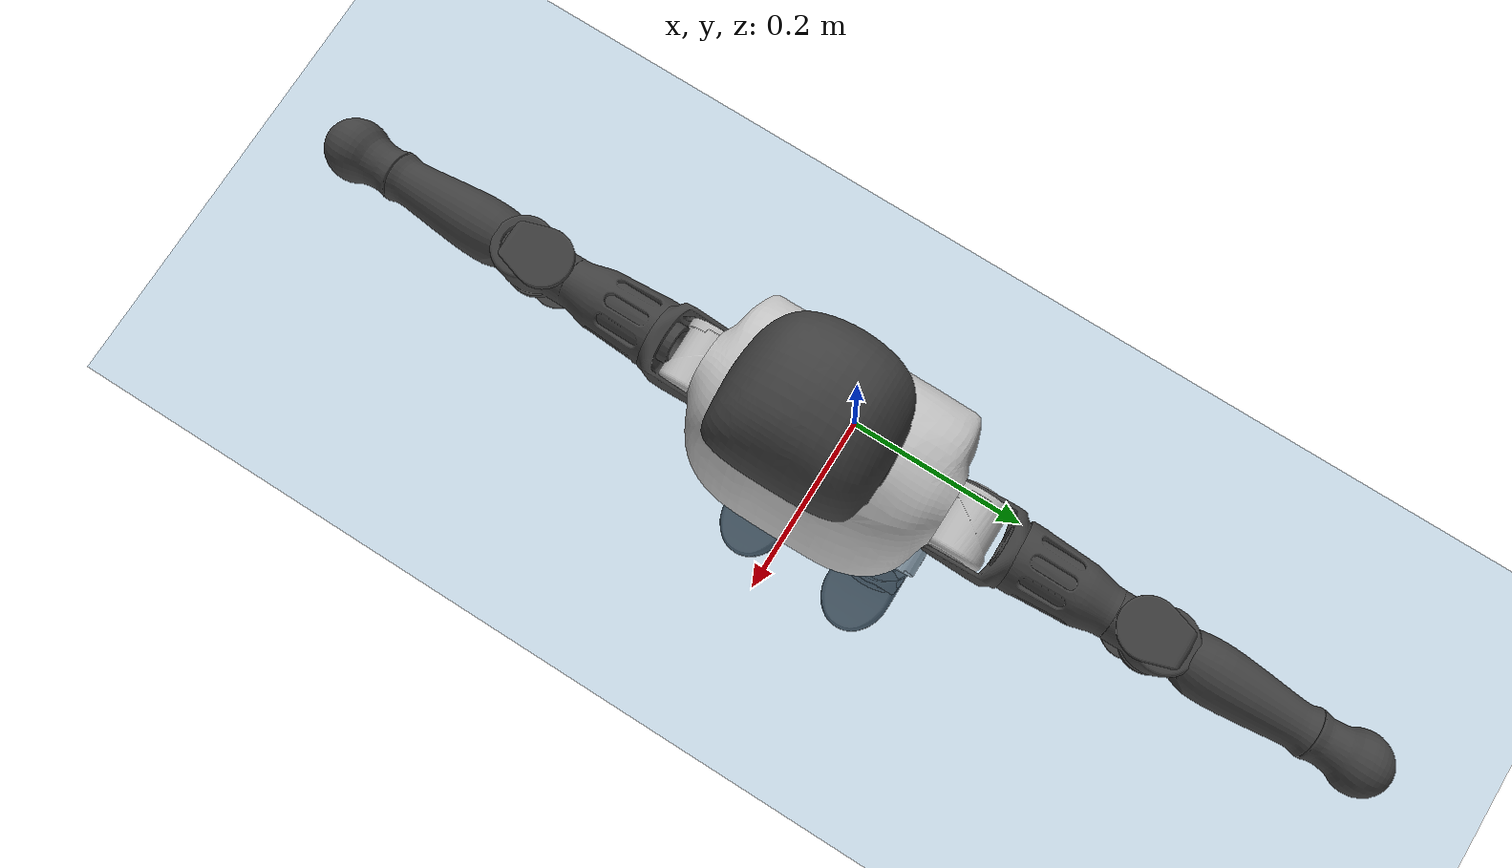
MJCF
<mujoco model="T1">
  <compiler angle="radian" assetdir="assets" balanceinertia="true" inertiafromgeom="false"/>

  <option timestep="0.005" density="1.2" viscosity="2e-05"/>

  <size nkey="1"/>

  <visual>
    <quality shadowsize="8192"/>
    <map shadowclip="0.5"/>
  </visual>

  <default>
    <default class="/">
      <joint armature="0.01" damping="0.01" frictionloss="0.1"/>
      <geom contype="0" conaffinity="0" group="1" solref="-1000 -80"/>
      <site size="0.01 0.005 0.005" group="5"/>
      <general forcelimited="true" biastype="affine" gainprm="25" biasprm="0 -25 -0.6"/>
      <default class="t1">
        <geom rgba="0.25 0.25 0.25 1"/>
        <default class="visual">
          <geom type="mesh" group="2"/>
        </default>
        <default class="collision">
          <geom group="3"/>
        </default>
        <default class="foot">
          <geom size="0.1115 0.05 0.015" type="box" condim="6" group="4" priority="1" solimp="0.015 1 0.015"/>
        </default>
        <default class="reward_collision_sphere">
          <geom group="5" rgba="1 0 0 1"/>
        </default>
      </default>
    </default>
  </default>

  <asset>
    <texture type="skybox" colorspace="auto" name="//unnamed_texture_0" builtin="gradient" rgb1="0.95 0.95 0.95" rgb2="0.95 0.95 0.95" width="100" height="600"/>
    <texture type="2d" colorspace="auto" name="texplane" builtin="checker" rgb1="0.345 0.575 0.748" rgb2="0.345 0.575 0.748" markrgb="1 1 1" width="512" height="512"/>
    <material name="MatPlane" class="/" texture="texplane" texuniform="true" texrepeat="2 2" specular="0.9"/>
    <mesh name="Trunk" class="/" file="Trunk.stl"/>
    <mesh name="H1" class="/" file="H1.stl"/>
    <mesh name="H2" class="/" file="H2.stl"/>
    <mesh name="AL1" class="/" file="AL1.stl"/>
    <mesh name="AL2" class="/" file="AL2.stl"/>
    <mesh name="AL3" class="/" file="AL3.stl"/>
    <mesh name="left_hand_link" class="/" file="left_hand_link.stl"/>
    <mesh name="AR1" class="/" file="AR1.stl"/>
    <mesh name="AR2" class="/" file="AR2.stl"/>
    <mesh name="AR3" class="/" file="AR3.stl"/>
    <mesh name="right_hand_link" class="/" file="right_hand_link.stl"/>
    <mesh name="Waist" class="/" file="Waist.stl"/>
    <mesh name="Hip_Pitch_Left" class="/" file="Hip_Pitch_Left.stl"/>
    <mesh name="Hip_Roll_Left" class="/" file="Hip_Roll_Left.stl"/>
    <mesh name="Hip_Yaw_Left" class="/" file="Hip_Yaw_Left.stl"/>
    <mesh name="Shank_Left" class="/" file="Shank_Left.stl"/>
    <mesh name="Ankle_Cross_Left" class="/" file="Ankle_Cross_Left.stl"/>
    <mesh name="left_foot_link" class="/" file="left_foot_link.stl"/>
    <mesh name="Hip_Pitch_Right" class="/" file="Hip_Pitch_Right.stl"/>
    <mesh name="Hip_Roll_Right" class="/" file="Hip_Roll_Right.stl"/>
    <mesh name="Hip_Yaw_Right" class="/" file="Hip_Yaw_Right.stl"/>
    <mesh name="Shank_Right" class="/" file="Shank_Right.stl"/>
    <mesh name="Ankle_Cross_Right" class="/" file="Ankle_Cross_Right.stl"/>
    <mesh name="right_foot_link" class="/" file="right_foot_link.stl"/>
  </asset>

  <worldbody>
    <geom name="floor" class="/" size="100 100 0.125" type="plane" group="0" material="MatPlane"/>
    <light name="toplight_shadow" class="/" pos="0 0 5" dir="0.0990148 0.0990148 -0.990148" type="directional" ambient="0.04 0.04 0.04" diffuse="0.55 0.55 0.55" specular="0.12 0.12 0.12"/>
    <light name="toplight_fill" class="/" pos="0 0 5" dir="0.0990148 0.0990148 -0.990148" type="directional" castshadow="false" ambient="0.04 0.04 0.04" diffuse="0.3 0.3 0.3" specular="0.08 0.08 0.08"/>
    <body name="trunk" childclass="t1" pos="-0.00171323 0.00280479 -0.00133771" quat="0.999999 0.00093687 -0.000827992 0.000991786">
      <inertial pos="0.0514432 0.00168827 0.084752" quat="0.999929 -0.0031416 -0.0114838 0.000825779" mass="7.50371" diaginertia="0.0636477 0.0353678 0.0151088"/>
      <joint name="//unnamed_joint_0" type="free" armature="0" damping="0" frictionloss="0"/>
      <geom name="//unnamed_geom_1" class="visual" rgba="0.76 0.76 0.76 1" mesh="Trunk"/>
      <geom name="//unnamed_geom_2" class="collision" size="0.0648058 0.0864077 0.129612" pos="0.0563089 0 0.0946452" type="box"/>
      <geom name="//unnamed_geom_3" class="reward_collision_sphere" size="0.0993689" pos="0.0563089 0 0.078871"/>
      <geom name="//unnamed_geom_4" class="reward_collision_sphere" size="0.0129612" pos="0.0563089 0.0735283 0"/>
      <geom name="//unnamed_geom_5" class="reward_collision_sphere" size="0.0129612" pos="0.0563089 -0.0735283 0"/>
      <geom name="//unnamed_geom_6" class="reward_collision_sphere" size="0.0129612" pos="0.0563089 0.0925591 0.141968"/>
      <geom name="//unnamed_geom_7" class="reward_collision_sphere" size="0.0129612" pos="0.0563089 -0.0925591 0.141968"/>
      <site name="imu" pos="-0.00669359 -0.0118408 0.0121159" size="0.00864077"/>
      <camera name="track" pos="0 -1.73008 0" quat="0.707107 0.707107 0 0" mode="trackcom"/>
      <camera name="ego_camera" pos="0.114495 0 0.331258" quat="-0.5 -0.5 0.5 0.5"/>
      <body name="H1" pos="0.055292 -0.00329534 0.192615" quat="1 -3.30319e-05 -4.88506e-05 -3.0887e-05">
        <inertial pos="0.00113285 -8.13166e-06 0.0438581" quat="0.758244 -0.0312066 0.0219707 0.650852" mass="0.275719" diaginertia="0.000179578 0.00010677 4.52245e-05"/>
        <joint name="AAHead_yaw" pos="0 0 0" axis="-0.00448979 -0.0110008 0.999929" range="-1.5971 1.60764" armature="0.00951012" damping="0" frictionloss="0.0619719"/>
        <geom name="//unnamed_geom_8" class="visual" mesh="H1"/>
        <body name="H2" pos="-0.00298398 -4.01566e-05 0.0483356" quat="1 -8.75907e-05 0.00026597 -0.000383841">
          <inertial pos="0.00847954 -1.22295e-05 0.0782107" quat="0.987717 0.105738 -0.0819441 -0.0807458" mass="0.410739" diaginertia="0.00151336 0.000983644 0.000516965"/>
          <joint name="Head_pitch" pos="0 0 0" axis="-0.0090346 -0.999926 -0.00817461" range="-1.25431 0.386319" armature="0.0105568" damping="0.00611047" frictionloss="0.0759658"/>
          <geom name="//unnamed_geom_9" class="visual" mesh="H2"/>
          <geom name="//unnamed_geom_10" class="collision" size="0.0691262" pos="0.00938482 0 0.0867581"/>
          <geom name="//unnamed_geom_11" class="reward_collision_sphere" size="0.0777669" pos="0.0187696 0 0.078871"/>
        </body>
      </body>
      <body name="AL1" pos="0.0545935 0.0961986 0.170286" quat="1 0.000270327 0.000811149 -0.000161828">
        <inertial pos="-0.0015549 0.039401 0.00132253" quat="0.508413 0.482977 -0.522762 0.484736" mass="0.329647" diaginertia="0.000989321 0.000629935 8.60183e-05"/>
        <joint name="Left_Shoulder_Pitch" pos="0 0 0" axis="0.00236764 0.999997 -0.000166998" range="-3.31797 1.25131" armature="0.00861986" damping="0.00324446" frictionloss="0.0758646"/>
        <geom name="//unnamed_geom_12" class="visual" rgba="0.76 0.76 0.76 1" mesh="AL1"/>
        <body name="AL2" pos="0.000969375 0.0417476 -0.00106291" quat="1 -0.00011757 6.86035e-05 0.000126565">
          <inertial pos="0.00444357 0.0323675 -0.00083273" quat="0.488839 0.51111 -0.487114 0.51237" mass="0.100957" diaginertia="0.000285658 0.00016754 5.07992e-05"/>
          <joint name="Left_Shoulder_Roll" pos="0 0 0" axis="-0.999939 -0.00507357 -0.0097895" range="-1.60274 1.74058" armature="0.00871848" damping="0.00107726" frictionloss="0.0775174"/>
          <geom name="//unnamed_geom_13" class="visual" mesh="AL2"/>
          <body name="AL3" pos="-0.00215428 0.054 0.000747151" quat="1 0.00011226 0.000615985 0.000402682">
            <inertial pos="0.00429945 0.0752131 0.000574193" quat="0.700649 0.713447 -0.00646796 0.006489" mass="0.650017" diaginertia="0.00948327 0.00649902 0.000193311"/>
            <joint name="Left_Elbow_Pitch" pos="0 0 0" axis="-0.000991684 -0.99998 0.0062853" range="-2.26336 2.2727" armature="0.00870821" damping="0.00626024" frictionloss="0.0756372"/>
            <geom name="//unnamed_geom_14" class="visual" mesh="AL3"/>
            <geom name="//unnamed_geom_15" class="collision" size="0.0259223 0.0648058" pos="0 0.0432519 0" quat="0.707105 0.707108 0 0" type="cylinder"/>
            <geom name="//unnamed_geom_16" class="reward_collision_sphere" size="0.0311068"/>
            <body name="left_hand_link" pos="-0.000426387 0.126912 0.00552548" quat="0.999998 -0.00118469 0.000841259 -0.000961865">
              <inertial pos="5.94233e-06 0.0954983 -0.000178292" quat="0.70904 0.705166 -0.000221579 0.00188815" mass="0.213712" diaginertia="0.00603885 0.0040446 7.12419e-05"/>
              <joint name="Left_Elbow_Yaw" pos="0 0 0" axis="0.00429203 -0.0128262 0.999909" range="-2.49202 -0.0353486" armature="0.00773981" damping="0.0201053" frictionloss="0.0882524"/>
              <geom name="//unnamed_geom_17" class="visual" mesh="left_hand_link"/>
              <geom name="//unnamed_geom_18" class="collision" size="0.0259223 0.0756067" pos="0 0.112455 0" quat="0.707105 0.707108 0 0" type="cylinder"/>
              <geom name="//unnamed_geom_19" class="reward_collision_sphere" size="0.0432039"/>
              <geom name="//unnamed_geom_20" class="reward_collision_sphere" size="0.0302427" pos="0 0.0951543 0"/>
              <geom name="//unnamed_geom_21" class="reward_collision_sphere" size="0.0302427" pos="0 0.185983 0"/>
            </body>
          </body>
        </body>
      </body>
      <body name="AR1" pos="0.0542733 -0.0871336 0.172929" quat="0.999999 -0.00122708 -0.000516161 0.000211453">
        <inertial pos="-0.000589297 -0.0362952 -0.00434321" quat="0.505472 0.497706 -0.494611 0.502142" mass="0.338803" diaginertia="0.000980131 0.000655767 8.8415e-05"/>
        <joint name="Right_Shoulder_Pitch" pos="0 0 0" axis="0.00708805 -0.999803 -0.0185323" range="-1.26035 3.27995" armature="0.00951042" damping="0.0107538" frictionloss="0.0788517"/>
        <geom name="//unnamed_geom_22" class="visual" rgba="0.76 0.76 0.76 1" mesh="AR1"/>
        <body name="AR2" pos="-0.000132925 -0.0408274 0.00209559" quat="1 2.72261e-05 2.92035e-05 -5.08217e-05">
          <inertial pos="0.00344102 -0.0331406 0.000170565" quat="0.509489 0.490821 -0.510809 0.488457" mass="0.0987596" diaginertia="0.00026826 0.000153344 5.3573e-05"/>
          <joint name="Right_Shoulder_Roll" pos="0 0 0" axis="-0.999977 -0.00417324 0.00537355" range="-1.74554 1.55663" armature="0.010182" damping="0.00774944" frictionloss="0.0764684"/>
          <geom name="//unnamed_geom_23" class="visual" mesh="AR2"/>
          <body name="AR3" pos="-0.00214794 -0.0494936 -0.00350351" quat="0.999999 0.000264815 0.00102604 7.60353e-05">
            <inertial pos="-0.00553496 -0.0722916 -0.00302548" quat="0.707525 0.70668 -0.00241486 0.00247675" mass="0.663121" diaginertia="0.0099409 0.00627151 0.000187001"/>
            <joint name="Right_Elbow_Pitch" pos="0 0 0" axis="0.000528814 1 -0.00065542" range="-2.32164 2.2748" armature="0.00824032" damping="0.0037287" frictionloss="0.062051"/>
            <geom name="//unnamed_geom_24" class="visual" mesh="AR3"/>
            <geom name="//unnamed_geom_25" class="collision" size="0.0259223 0.0648058" pos="0 -0.0432519 0" quat="0.707105 0.707108 0 0" type="cylinder"/>
            <geom name="//unnamed_geom_26" class="reward_collision_sphere" size="0.0311068"/>
            <body name="right_hand_link" pos="-8.64185e-06 -0.123334 0.00301241" quat="1 -0.00016825 -0.000253662 -0.000251848">
              <inertial pos="-0.000416571 -0.0922323 -0.00146478" quat="0.706127 0.708084 0.00117413 -0.000354429" mass="0.203598" diaginertia="0.00557092 0.00369101 6.08328e-05"/>
              <joint name="Right_Elbow_Yaw" pos="0 0 0" axis="0.0226177 -0.0108924 0.999685" range="-0.0460415 2.44609" armature="0.00803614" damping="0.00415489" frictionloss="0.088163"/>
              <geom name="//unnamed_geom_27" class="visual" mesh="right_hand_link"/>
              <geom name="//unnamed_geom_28" class="collision" size="0.0259223 0.0756067" pos="0 -0.112455 0" quat="0.707105 0.707108 0 0" type="cylinder"/>
              <geom name="//unnamed_geom_29" class="reward_collision_sphere" size="0.0432039"/>
              <geom name="//unnamed_geom_30" class="reward_collision_sphere" size="0.0302427" pos="0 -0.0951543 0"/>
              <geom name="//unnamed_geom_31" class="reward_collision_sphere" size="0.0302427" pos="0 -0.185983 0"/>
            </body>
          </body>
        </body>
      </body>
      <body name="Waist" pos="0.0643215 -0.00231762 -0.0917186" quat="0.999997 -0.000628509 0.00187106 0.00122103">
        <inertial pos="0.00615825 -0.00144093 0.00676958" quat="0.986286 0.0103953 -0.164071 0.0146013" mass="1.68694" diaginertia="0.0037717 0.00242158 0.00136174"/>
        <joint name="Waist" pos="0 0 0" axis="-7.27261e-05 0.000422648 1" range="-1.56645 1.62171" armature="0.00893647" damping="0.00928569" frictionloss="0.083552"/>
        <geom name="//unnamed_geom_32" class="visual" mesh="Waist"/>
        <body name="Hip_Pitch_Left" pos="0.00363103 0.092937 -0.00269734" quat="0.999999 0.000459684 -0.00110787 -0.000441298">
          <inertial pos="-0.00307431 -0.00528986 -0.0150759" quat="0.97262 0.230804 0.0264401 0.00642731" mass="0.674492" diaginertia="0.00137352 0.000692961 0.000372234"/>
          <joint name="Left_Hip_Pitch" pos="0 0 0" axis="0.00612962 0.999951 0.00783615" range="-1.77156 1.51908" armature="0.00882859" damping="0.0122997" frictionloss="0.0907775"/>
          <geom name="//unnamed_geom_33" class="visual" rgba="0.76 0.76 0.76 1" mesh="Hip_Pitch_Left"/>
          <body name="Hip_Roll_Left" pos="0.00554086 -0.0016422 -0.00768476" quat="1 -1.00941e-05 -1.9204e-05 1.46322e-05">
            <inertial pos="-7.20495e-05 0.00500002 -0.0439569" quat="0.707429 -0.00766651 -0.00682541 0.70671" mass="0.25411" diaginertia="0.00133712 0.000788068 0.00014849"/>
            <joint name="Left_Hip_Roll" pos="0 0 0" axis="-0.999984 0.00175357 0.00542419" range="-1.61852 0.215062" armature="0.00973007" damping="0.0338927" frictionloss="0.0794086"/>
            <geom name="//unnamed_geom_34" class="visual" mesh="Hip_Roll_Left"/>
            <geom name="//unnamed_geom_35" class="reward_collision_sphere" size="0.0475242"/>
            <body name="Hip_Yaw_Left" pos="0.00587869 -0.00142902 -0.0624679" quat="1 7.6743e-05 3.7018e-05 4.73589e-05">
              <inertial pos="-0.00420016 0.00145209 -0.0693757" quat="0.699328 -0.0399934 -0.0393231 0.712597" mass="1.43978" diaginertia="0.018978 0.0130504 0.000833729"/>
              <joint name="Left_Hip_Yaw" pos="0 0 0" axis="0.000996177 0.000738776 -0.999999" stiffness="0.0143071" range="-0.904272 0.96201" armature="0.00884959" damping="0.00355357" frictionloss="0.0829936"/>
              <geom name="//unnamed_geom_36" class="visual" mesh="Hip_Yaw_Left"/>
              <geom name="//unnamed_geom_37" class="collision" size="0.0432039 0.0691262" type="cylinder"/>
              <body name="Shank_Left" pos="-0.00619802 0.000218819 -0.0957474" quat="1 -0.00028499 -0.000306478 0.000106973">
                <inertial pos="-0.00382824 0.000418831 -0.0971721" quat="0.997541 0.000516455 -0.0246346 0.0656114" mass="1.15297" diaginertia="0.0258461 0.0183066 0.000599136"/>
                <joint name="Left_Knee_Pitch" pos="0 0 0" axis="-0.00561326 0.999984 -0.000870729" stiffness="0.000707651" range="-0.00789688 2.34554" armature="0.00825616" damping="0.00856792" frictionloss="0.0817454"/>
                <geom name="//unnamed_geom_38" class="visual" mesh="Shank_Left"/>
                <geom name="//unnamed_geom_39" class="collision" size="0.0432039 0.0648058" pos="0 0 -0.0946452" type="cylinder"/>
                <geom name="//unnamed_geom_40" class="reward_collision_sphere" size="0.056165"/>
                <body name="Ankle_Cross_Left" pos="-0.00368698 -0.000817094 -0.226644" quat="1 -0.000256895 -7.49694e-05 5.87553e-05">
                  <inertial pos="0.00229596 0.00305569 -0.00592225" quat="0.445873 0.549831 0.550264 0.442823" mass="0.0479615" diaginertia="2.08605e-05 1.23097e-05 3.50273e-06"/>
                  <joint name="Left_Ankle_Pitch" pos="0 0 0" axis="0.000472178 0.999999 -0.00110034" stiffness="0.00747348" range="-0.872436 0.361997" armature="0.00644201" damping="0" frictionloss="0.0908186"/>
                  <geom name="//unnamed_geom_41" class="visual" mesh="Ankle_Cross_Left"/>
                  <body name="left_foot_link" pos="-0.0022866 0.000768777 -0.0101911" quat="0.999996 0.000945155 -0.00269636 -0.000295238">
                    <inertial pos="0.00132883 -0.000300772 -0.00959032" quat="0.00276765 0.634466 -0.00151726 0.772944" mass="0.417661" diaginertia="0.00182612 0.00112739 0.000645"/>
                    <joint name="Left_Ankle_Roll" pos="0 0 0" axis="-0.999644 -0.0250406 -0.00919144" range="-0.40428 0.431402" armature="0.0081632" damping="0.015378" frictionloss="0.0755382"/>
                    <geom name="//unnamed_geom_42" class="visual" mesh="left_foot_link"/>
                    <geom name="left_foot" class="foot" size="0.0992384 0.0508539 0.0113587" pos="0.00938482 0 -0.0118307"/>
                    <geom name="//unnamed_geom_44" class="reward_collision_sphere" size="0.044932" pos="0.00938482 0 -0.0118307"/>
                    <geom name="//unnamed_geom_45" class="reward_collision_sphere" size="0.0259223" pos="0.0891558 -0.0198959 -0.0118307"/>
                    <geom name="//unnamed_geom_46" class="reward_collision_sphere" size="0.0259223" pos="-0.0656938 -0.0198959 -0.0118307"/>
                    <site name="left_foot" class="foot" pos="0.00938482 0 -0.0118307" size="0.00864077"/>
                  </body>
                </body>
              </body>
            </body>
          </body>
        </body>
        <body name="Hip_Pitch_Right" pos="-0.00445971 -0.0920375 0.00536414" quat="1 -0.000291887 -5.2778e-05 0.000479981">
          <inertial pos="0.00483148 0.00970317 -0.0158984" quat="0.972732 -0.230383 0.0248462 -0.00995433" mass="0.662456" diaginertia="0.00128827 0.000689732 0.000390139"/>
          <joint name="Right_Hip_Pitch" pos="0 0 0" axis="-0.000136559 -0.999964 -0.00852164" range="-1.61886 1.8054" armature="0.00790473" damping="0.027538" frictionloss="0.0935373"/>
          <geom name="//unnamed_geom_47" class="visual" rgba="0.76 0.76 0.76 1" mesh="Hip_Pitch_Right"/>
          <body name="Hip_Roll_Right" pos="-7.0269e-05 0.00153371 -0.0105293" quat="1 7.93811e-07 4.61547e-06 -6.27108e-05">
            <inertial pos="0.00206191 0.00173191 -0.0431802" quat="0.706285 -0.016552 0.00232475 0.707731" mass="0.245841" diaginertia="0.0011643 0.000692999 0.000151134"/>
            <joint name="Right_Hip_Roll" pos="0 0 0" axis="-0.999993 -0.00340667 0.00161718" range="-0.249663 1.584" armature="0.0084052" damping="0.0187708" frictionloss="0.0829469"/>
            <geom name="//unnamed_geom_48" class="visual" mesh="Hip_Roll_Right"/>
            <geom name="//unnamed_geom_49" class="reward_collision_sphere" size="0.0475242"/>
            <body name="Hip_Yaw_Right" pos="0.004824 -0.000787444 -0.0676126" quat="1 0.000201351 0.000419751 0.000203561">
              <inertial pos="-0.00799926 -0.00186974 -0.0704631" quat="0.714411 -0.0332242 -0.0336438 0.698126" mass="1.34911" diaginertia="0.0172113 0.0116189 0.000722095"/>
              <joint name="Right_Hip_Yaw" pos="0 0 0" axis="-0.00143579 0.000583172 -0.999999" range="-1.00024 1.01633" armature="0.00963994" damping="0" frictionloss="0.0775792"/>
              <geom name="//unnamed_geom_50" class="visual" mesh="Hip_Yaw_Right"/>
              <geom name="//unnamed_geom_51" class="collision" size="0.0432039 0.0691262" type="cylinder"/>
              <body name="Shank_Right" pos="-0.0105099 -0.000435284 -0.10479" quat="1 0.000703684 0.000693701 7.03329e-05">
                <inertial pos="-0.00666155 0.00236824 -0.0957321" quat="0.999338 -0.0066168 -0.0204318 -0.0293576" mass="1.10313" diaginertia="0.0247619 0.0168019 0.000618628"/>
                <joint name="Right_Knee_Pitch" pos="0 0 0" axis="4.35375e-05 -0.999968 -0.0080273" stiffness="0.000441362" range="-2.26734 -0.00287057" armature="0.00760556" damping="0.0103887" frictionloss="0.0764539"/>
                <geom name="//unnamed_geom_52" class="visual" mesh="Shank_Right"/>
                <geom name="//unnamed_geom_53" class="collision" size="0.0432039 0.0648058" pos="0 0 -0.0946452" type="cylinder"/>
                <geom name="//unnamed_geom_54" class="reward_collision_sphere" size="0.056165"/>
                <body name="Ankle_Cross_Right" pos="0.00244482 0.00189595 -0.223377" quat="1 -0.000217669 -0.000214506 -0.000183662">
                  <inertial pos="-0.00427388 0.00104609 -0.00651118" quat="0.443047 0.552501 0.550458 0.442096" mass="0.0476019" diaginertia="2.03998e-05 1.2604e-05 3.34551e-06"/>
                  <joint name="Right_Ankle_Pitch" pos="0 0 0" axis="-0.0097802 -0.999878 -0.0121737" stiffness="0.00748629" range="-0.353924 0.899158" armature="0.00866272" damping="0.0112021" frictionloss="0.0828547"/>
                  <geom name="//unnamed_geom_55" class="visual" mesh="Ankle_Cross_Right"/>
                  <body name="right_foot_link" pos="-0.00192551 -0.00290823 -0.0198746" quat="1 0.000112611 -2.84989e-05 0.000215939">
                    <inertial pos="-0.000161476 -0.00260466 -0.00194455" quat="0.0060997 0.625784 0.0102109 0.779905" mass="0.466631" diaginertia="0.00216035 0.00122587 0.000757168"/>
                    <joint name="Right_Ankle_Roll" pos="0 0 0" axis="-0.999971 -0.00169923 0.00742307" stiffness="0.00728502" range="-0.398513 0.357806" armature="0.0112596" damping="0.0320515" frictionloss="0.0819556"/>
                    <geom name="//unnamed_geom_56" class="visual" mesh="right_foot_link"/>
                    <geom name="right_foot" class="foot" size="0.090305 0.0473888 0.0116698" pos="0.00938482 0 -0.0118307"/>
                    <geom name="//unnamed_geom_58" class="reward_collision_sphere" size="0.0345631"/>
                    <geom name="//unnamed_geom_59" class="reward_collision_sphere" size="0.0259223" pos="0.00938482 0 -0.0118307"/>
                    <geom name="//unnamed_geom_60" class="reward_collision_sphere" size="0.0259223" pos="0.0891558 0.0198959 -0.0118307"/>
                    <geom name="//unnamed_geom_61" class="reward_collision_sphere" size="0.0259223" pos="-0.0656938 0.0198959 -0.0118307"/>
                    <site name="right_foot" class="foot" pos="0.00938482 0 -0.0118307" size="0.00864077"/>
                  </body>
                </body>
              </body>
            </body>
          </body>
        </body>
      </body>
    </body>
  </worldbody>

  <contact>
    <pair class="/" geom1="floor" geom2="left_foot" name="//unnamed_contact_0"/>
    <pair class="/" geom1="floor" geom2="right_foot" name="//unnamed_contact_1"/>
  </contact>

  <actuator>
    <general name="AAHead_yaw" class="/" joint="AAHead_yaw" forcerange="-6.23412 6.23412" gainprm="20.9235" biasprm="0 -20.9235 -0.524269"/>
    <general name="Head_pitch" class="/" joint="Head_pitch" forcerange="-6.12892 6.12892" gainprm="20.9235" biasprm="0 -20.9235 -0.524269"/>
    <general name="Left_Shoulder_Pitch" class="/" joint="Left_Shoulder_Pitch" forcerange="-18.7955 18.7955" gainprm="20.9235" biasprm="0 -20.9235 -0.524269"/>
    <general name="Left_Shoulder_Roll" class="/" joint="Left_Shoulder_Roll" forcerange="-17.3444 17.3444" gainprm="20.9235" biasprm="0 -20.9235 -0.524269"/>
    <general name="Left_Elbow_Pitch" class="/" joint="Left_Elbow_Pitch" forcerange="-15.2695 15.2695" gainprm="20.9235" biasprm="0 -20.9235 -0.524269"/>
    <general name="Left_Elbow_Yaw" class="/" joint="Left_Elbow_Yaw" forcerange="-15.9319 15.9319" gainprm="20.9235" biasprm="0 -20.9235 -0.524269"/>
    <general name="Right_Shoulder_Pitch" class="/" joint="Right_Shoulder_Pitch" forcerange="-14.2879 14.2879" gainprm="20.9235" biasprm="0 -20.9235 -0.524269"/>
    <general name="Right_Shoulder_Roll" class="/" joint="Right_Shoulder_Roll" forcerange="-14.9292 14.9292" gainprm="20.9235" biasprm="0 -20.9235 -0.524269"/>
    <general name="Right_Elbow_Pitch" class="/" joint="Right_Elbow_Pitch" forcerange="-17.0994 17.0994" gainprm="20.9235" biasprm="0 -20.9235 -0.524269"/>
    <general name="Right_Elbow_Yaw" class="/" joint="Right_Elbow_Yaw" forcerange="-13.9769 13.9769" gainprm="20.9235" biasprm="0 -20.9235 -0.524269"/>
    <general name="Waist" class="/" joint="Waist" forcerange="-28.2272 28.2272" gainprm="20.9235" biasprm="0 -20.9235 -0.524269"/>
    <general name="Left_Hip_Pitch" class="/" joint="Left_Hip_Pitch" forcerange="-42.0425 42.0425" gainprm="20.9235" biasprm="0 -20.9235 -0.524269"/>
    <general name="Left_Hip_Roll" class="/" joint="Left_Hip_Roll" forcerange="-27.7021 27.7021" gainprm="20.9235" biasprm="0 -20.9235 -0.524269"/>
    <general name="Left_Hip_Yaw" class="/" joint="Left_Hip_Yaw" forcerange="-25.6536 25.6536" gainprm="20.9235" biasprm="0 -20.9235 -0.524269"/>
    <general name="Left_Knee_Pitch" class="/" joint="Left_Knee_Pitch" forcerange="-52.1471 52.1471" gainprm="20.9235" biasprm="0 -20.9235 -0.524269"/>
    <general name="Left_Ankle_Pitch" class="/" joint="Left_Ankle_Pitch" forcerange="-17.3313 17.3313" gainprm="20.9235" biasprm="0 -20.9235 -0.524269"/>
    <general name="Left_Ankle_Roll" class="/" joint="Left_Ankle_Roll" forcerange="-13.991 13.991" gainprm="20.9235" biasprm="0 -20.9235 -0.524269"/>
    <general name="Right_Hip_Pitch" class="/" joint="Right_Hip_Pitch" forcerange="-34.2083 34.2083" gainprm="20.9235" biasprm="0 -20.9235 -0.524269"/>
    <general name="Right_Hip_Roll" class="/" joint="Right_Hip_Roll" forcerange="-20.8587 20.8587" gainprm="20.9235" biasprm="0 -20.9235 -0.524269"/>
    <general name="Right_Hip_Yaw" class="/" joint="Right_Hip_Yaw" forcerange="-26.6043 26.6043" gainprm="20.9235" biasprm="0 -20.9235 -0.524269"/>
    <general name="Right_Knee_Pitch" class="/" joint="Right_Knee_Pitch" forcerange="-53.0085 53.0085" gainprm="20.9235" biasprm="0 -20.9235 -0.524269"/>
    <general name="Right_Ankle_Pitch" class="/" joint="Right_Ankle_Pitch" forcerange="-20.5089 20.5089" gainprm="20.9235" biasprm="0 -20.9235 -0.524269"/>
    <general name="Right_Ankle_Roll" class="/" joint="Right_Ankle_Roll" forcerange="-11.9834 11.9834" gainprm="20.9235" biasprm="0 -20.9235 -0.524269"/>
  </actuator>

  <sensor>
    <gyro site="imu" name="imu_angular_velocity"/>
    <velocimeter site="imu" name="imu_linear_velocity"/>
    <framelinvel objtype="site" objname="left_foot" name="left_foot_global_linear_velocity"/>
    <framelinvel objtype="site" objname="right_foot" name="right_foot_global_linear_velocity"/>
  </sensor>

  <keyframe>
    <key name="home" qpos="0 0 0.6385 1 0 0 0 0 0 0 1.4 0 -0.4 0 -1.4 0 0.4 0 -0.4 0 0 0.8 -0.4 0 0.4 0 0 -0.8 0.4 0"/>
  </keyframe>
</mujoco>
